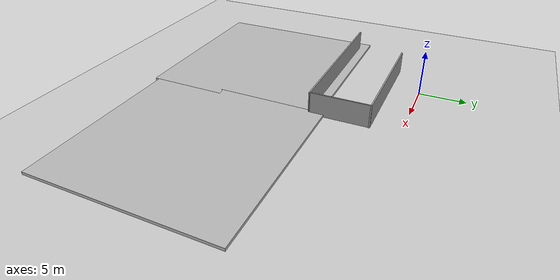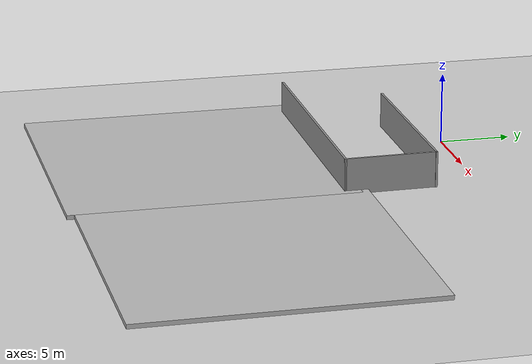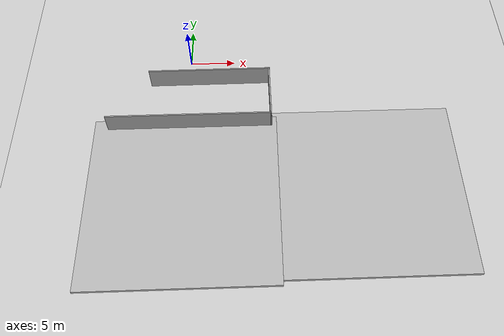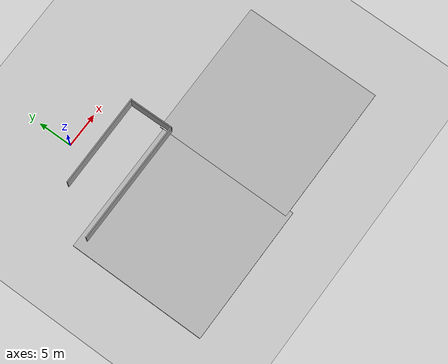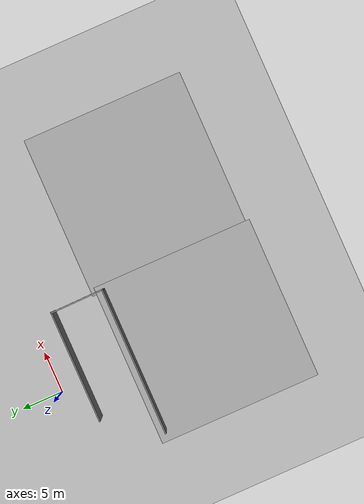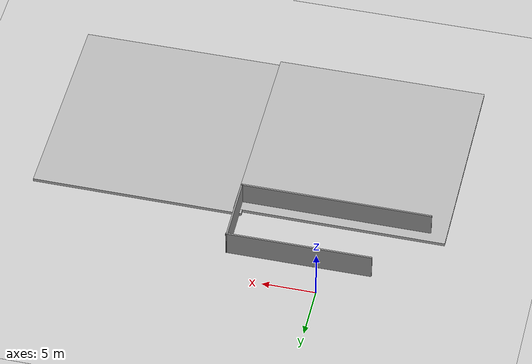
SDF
<sdf version="1.6">
 <world name="default">
  <model name="ground_plane">
   <static>1</static>
   <link name="link">
    <collision name="collision">
     <geometry><plane><normal>0 0 1</normal><size>100 100</size></plane></geometry>
     <surface><friction><ode><mu>100</mu><mu2>50</mu2></ode></friction></surface>
    </collision>
    <visual name="visual">
     <cast_shadows>0</cast_shadows>
     <geometry><plane><normal>0 0 1</normal><size>100 100</size></plane></geometry>
     <material>
      <script><uri>file://media/materials/scripts/gazebo.material</uri><name>Gazebo/Grey</name></script>
     </material>
    </visual>
   </link>
  </model>
  <model name="box_clone_4">
   <static>1</static>
   <pose>-0.304111 -18.3731 0 0 -0 0</pose>
   <link name="box">
    <visual name="visual"><geometry><box><size>20 20 0.5</size></box></geometry></visual>
    <collision name="visual">
     <geometry><box><size>20 20 0.5</size></box></geometry>
     <surface><friction><ode><mu>0.2</mu><mu2>0.2</mu2></ode></friction></surface>
    </collision>
   </link>
  </model>
  <model name="box_clone_6">
   <static>1</static>
   <pose>18.8151 -17.8765 0 0 -0 0</pose>
   <link name="box">
    <visual name="visual"><geometry><box><size>20 20 0.5</size></box></geometry></visual>
    <collision name="visual">
     <geometry><box><size>20 20 0.5</size></box></geometry>
     <surface><friction><ode><mu>0.2</mu><mu2>0.2</mu2></ode></friction></surface>
    </collision>
   </link>
  </model>
  <model name="Ramp">
   <pose>-3.77089 -1.15955 0 0 -0 0</pose>
   <link name="Wall_10">
    <collision name="Wall_10_Collision">
     <geometry><box><size>18 0.15 2.5</size></box></geometry>
     <pose>0 0 1.25 0 -0 0</pose>
    </collision>
    <visual name="Wall_10_Visual">
     <pose>0 0 1.25 0 -0 0</pose>
     <geometry><box><size>18 0.15 2.5</size></box></geometry>
     <material>
      <script><uri>file://media/materials/scripts/gazebo.material</uri><name>Gazebo/Grey</name></script>
      <ambient>1 1 1 1</ambient>
     </material>
    </visual>
    <pose>3.95888 -8.29965 0 0 -0 0</pose>
   </link>
   <link name="Wall_11">
    <collision name="Wall_11_Collision">
     <geometry><box><size>6.5 0.15 2.5</size></box></geometry>
     <pose>0 0 1.25 0 -0 0</pose>
    </collision>
    <visual name="Wall_11_Visual">
     <pose>0 0 1.25 0 -0 0</pose>
     <geometry><box><size>6.5 0.15 2.5</size></box></geometry>
     <material>
      <script><uri>file://media/materials/scripts/gazebo.material</uri><name>Gazebo/Grey</name></script>
      <ambient>1 1 1 1</ambient>
     </material>
    </visual>
    <pose>12.843 -5.12465 0 0 -0 1.58368</pose>
   </link>
   <link name="Wall_15">
    <collision name="Wall_15_Collision">
     <geometry><box><size>13.6603 0.15 2.5</size></box></geometry>
     <pose>0 0 1.25 0 -0 0</pose>
    </collision>
    <visual name="Wall_15_Visual">
     <pose>0 0 1.25 0 -0 0</pose>
     <geometry><box><size>13.6603 0.15 2.5</size></box></geometry>
     <material>
      <script><uri>file://media/materials/scripts/gazebo.material</uri><name>Gazebo/Grey</name></script>
      <ambient>1 1 1 1</ambient>
     </material>
    </visual>
    <pose>6.08784 -1.97335 0 0 -0 0.003507</pose>
   </link>
   <static>1</static>
  </model>
 </world>
</sdf>
